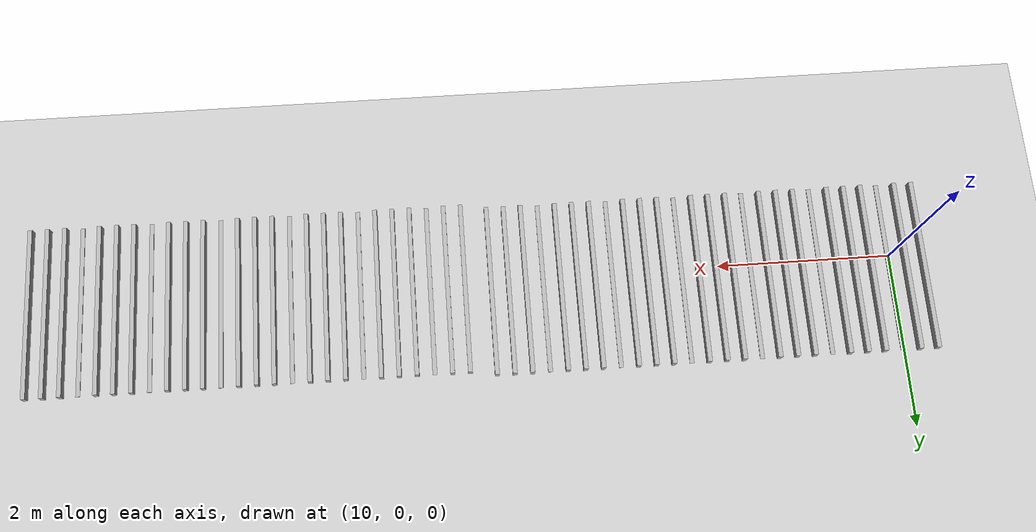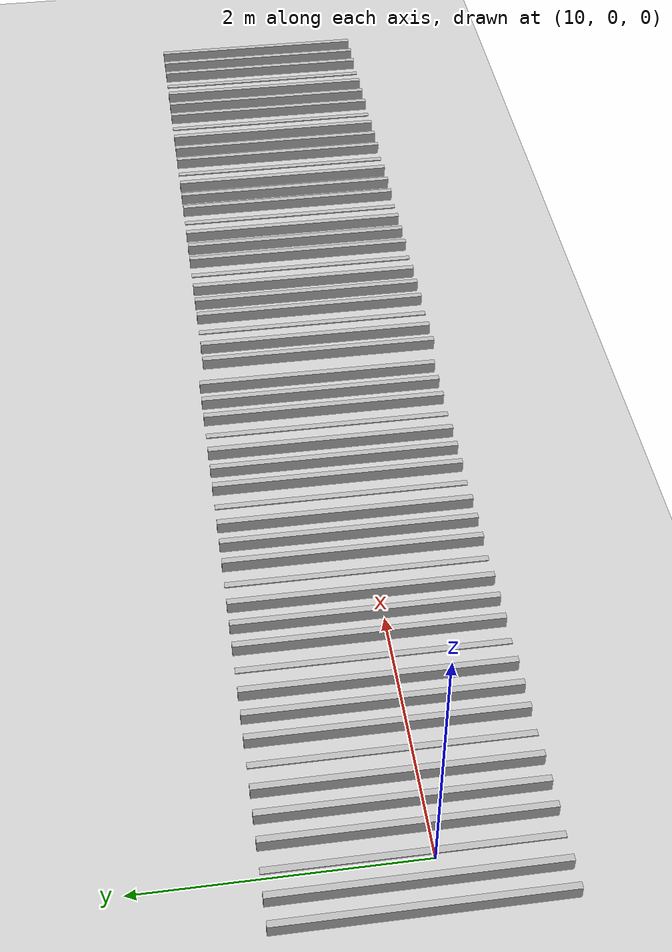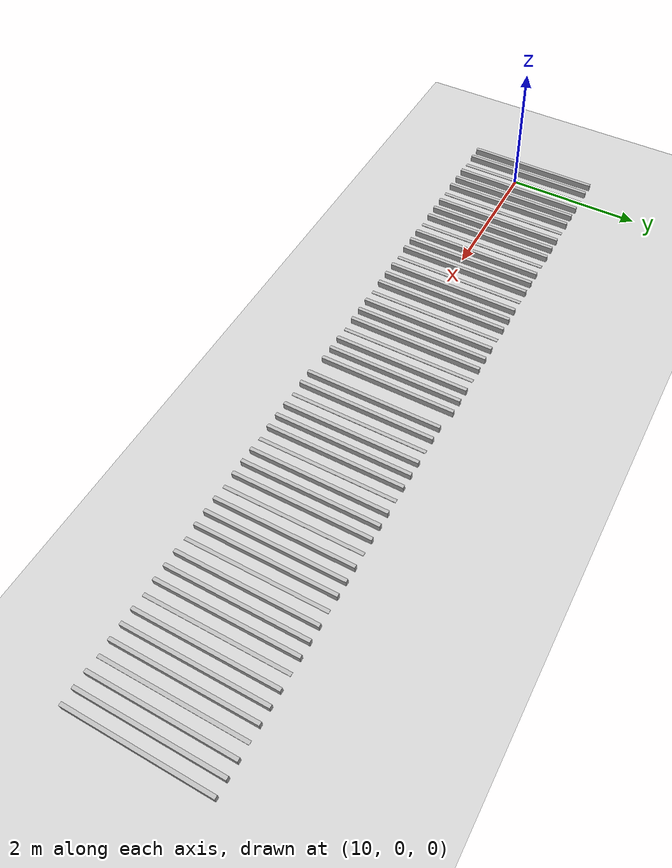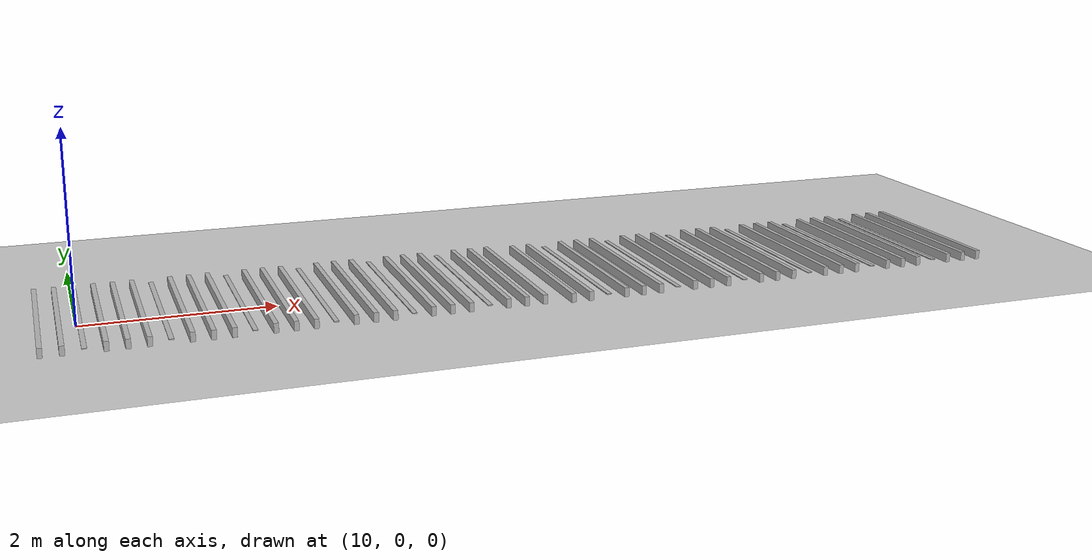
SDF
<sdf version="1.7">
 <world name="default">
  <model name="ground_plane">
   <static>1</static>
   <link name="link">
    <collision name="collision">
     <geometry><plane><normal>0 0 1</normal><size>100 100</size></plane></geometry>
     <surface>
      <contact><collide_bitmask>65535</collide_bitmask></contact>
      <friction><ode><mu>100</mu><mu2>50</mu2></ode></friction>
     </surface>
    </collision>
    <visual name="visual">
     <cast_shadows>0</cast_shadows>
     <geometry><plane><normal>0 0 1</normal><size>100 100</size></plane></geometry>
     <material>
      <script><uri>file://media/materials/scripts/gazebo.material</uri><name>Gazebo/Grey</name></script>
     </material>
    </visual>
   </link>
  </model>
  <model name="my_model_0">
   <link name="bot_wall0">
    <visual name="visual">
     <geometry><box><size>0.05 2 0.1</size></box></geometry>
     <material><script><uri>model://hallway/materials/scripts</uri><name>feature_3</name></script></material>
    </visual>
    <collision name="collision"><geometry><box><size>0.05 2 0.1</size></box></geometry></collision>
    <inertial>
     <inertia><ixx>1</ixx><ixy>0</ixy><ixz>0</ixz><iyy>1</iyy><iyz>0</iyz><izz>1</izz></inertia>
     <mass>1</mass>
    </inertial>
   </link>
   <link name="bot_wall1">
    <pose>0.2 0 0 0 -0 0</pose>
    <visual name="visual">
     <geometry><box><size>0.05 2 0.1</size></box></geometry>
     <material><script><uri>model://hallway/materials/scripts</uri><name>feature_3</name></script></material>
    </visual>
    <collision name="collision"><geometry><box><size>0.05 2 0.1</size></box></geometry></collision>
    <inertial>
     <inertia><ixx>1</ixx><ixy>0</ixy><ixz>0</ixz><iyy>1</iyy><iyz>0</iyz><izz>1</izz></inertia>
     <mass>1</mass>
    </inertial>
   </link>
   <link name="bot_wall2">
    <pose>0.4 0 0 0 -0 0</pose>
    <visual name="visual">
     <geometry><box><size>0.05 2 0.01</size></box></geometry>
     <material><script><uri>model://hallway/materials/scripts</uri><name>feature_3</name></script></material>
    </visual>
    <collision name="collision"><geometry><box><size>0.05 2 0.01</size></box></geometry></collision>
    <inertial>
     <inertia><ixx>1</ixx><ixy>0</ixy><ixz>0</ixz><iyy>1</iyy><iyz>0</iyz><izz>1</izz></inertia>
     <mass>1</mass>
    </inertial>
   </link>
   <link name="bot_wall3">
    <pose>0.6 0 0 0 -0 0</pose>
    <visual name="visual">
     <geometry><box><size>0.05 2 0.1</size></box></geometry>
     <material><script><uri>model://hallway/materials/scripts</uri><name>feature_3</name></script></material>
    </visual>
    <collision name="collision"><geometry><box><size>0.05 2 0.1</size></box></geometry></collision>
    <inertial>
     <inertia><ixx>1</ixx><ixy>0</ixy><ixz>0</ixz><iyy>1</iyy><iyz>0</iyz><izz>1</izz></inertia>
     <mass>1</mass>
    </inertial>
   </link>
   <link name="bot_wall4">
    <pose>0.8 0 0 0 -0 0</pose>
    <visual name="visual">
     <geometry><box><size>0.05 2 0.1</size></box></geometry>
     <material><script><uri>model://hallway/materials/scripts</uri><name>feature_3</name></script></material>
    </visual>
    <collision name="collision"><geometry><box><size>0.05 2 0.1</size></box></geometry></collision>
    <inertial>
     <inertia><ixx>1</ixx><ixy>0</ixy><ixz>0</ixz><iyy>1</iyy><iyz>0</iyz><izz>1</izz></inertia>
     <mass>1</mass>
    </inertial>
   </link>
   <link name="bot_wall5">
    <pose>1 0 0 0 -0 0</pose>
    <visual name="visual">
     <geometry><box><size>0.05 2 0.1</size></box></geometry>
     <material><script><uri>model://hallway/materials/scripts</uri><name>feature_3</name></script></material>
    </visual>
    <collision name="collision"><geometry><box><size>0.05 2 0.1</size></box></geometry></collision>
    <inertial>
     <inertia><ixx>1</ixx><ixy>0</ixy><ixz>0</ixz><iyy>1</iyy><iyz>0</iyz><izz>1</izz></inertia>
     <mass>1</mass>
    </inertial>
   </link>
   <link name="bot_wall6">
    <pose>1.2 0 0 0 -0 0</pose>
    <visual name="visual">
     <geometry><box><size>0.05 2 0.01</size></box></geometry>
     <material><script><uri>model://hallway/materials/scripts</uri><name>feature_3</name></script></material>
    </visual>
    <collision name="collision"><geometry><box><size>0.05 2 0.01</size></box></geometry></collision>
    <inertial>
     <inertia><ixx>1</ixx><ixy>0</ixy><ixz>0</ixz><iyy>1</iyy><iyz>0</iyz><izz>1</izz></inertia>
     <mass>1</mass>
    </inertial>
   </link>
   <link name="bot_wall7">
    <pose>1.4 0 0 0 -0 0</pose>
    <visual name="visual">
     <geometry><box><size>0.05 2 0.1</size></box></geometry>
     <material><script><uri>model://hallway/materials/scripts</uri><name>feature_3</name></script></material>
    </visual>
    <collision name="collision"><geometry><box><size>0.05 2 0.1</size></box></geometry></collision>
    <inertial>
     <inertia><ixx>1</ixx><ixy>0</ixy><ixz>0</ixz><iyy>1</iyy><iyz>0</iyz><izz>1</izz></inertia>
     <mass>1</mass>
    </inertial>
   </link>
   <link name="bot_wall8">
    <pose>1.6 0 0 0 -0 0</pose>
    <visual name="visual">
     <geometry><box><size>0.05 2 0.1</size></box></geometry>
     <material><script><uri>model://hallway/materials/scripts</uri><name>feature_3</name></script></material>
    </visual>
    <collision name="collision"><geometry><box><size>0.05 2 0.1</size></box></geometry></collision>
    <inertial>
     <inertia><ixx>1</ixx><ixy>0</ixy><ixz>0</ixz><iyy>1</iyy><iyz>0</iyz><izz>1</izz></inertia>
     <mass>1</mass>
    </inertial>
   </link>
   <link name="bot_wall9">
    <pose>1.8 0 0 0 -0 0</pose>
    <visual name="visual">
     <geometry><box><size>0.05 2 0.1</size></box></geometry>
     <material><script><uri>model://hallway/materials/scripts</uri><name>feature_3</name></script></material>
    </visual>
    <collision name="collision"><geometry><box><size>0.05 2 0.1</size></box></geometry></collision>
    <inertial>
     <inertia><ixx>1</ixx><ixy>0</ixy><ixz>0</ixz><iyy>1</iyy><iyz>0</iyz><izz>1</izz></inertia>
     <mass>1</mass>
    </inertial>
   </link>
   <link name="bot_wall10">
    <pose>2 0 0 0 -0 0</pose>
    <visual name="visual">
     <geometry><box><size>0.05 2 0.01</size></box></geometry>
     <material><script><uri>model://hallway/materials/scripts</uri><name>feature_3</name></script></material>
    </visual>
    <collision name="collision"><geometry><box><size>0.05 2 0.01</size></box></geometry></collision>
    <inertial>
     <inertia><ixx>1</ixx><ixy>0</ixy><ixz>0</ixz><iyy>1</iyy><iyz>0</iyz><izz>1</izz></inertia>
     <mass>1</mass>
    </inertial>
   </link>
   <link name="bot_wall11">
    <pose>2.2 0 0 0 -0 0</pose>
    <visual name="visual">
     <geometry><box><size>0.05 2 0.1</size></box></geometry>
     <material><script><uri>model://hallway/materials/scripts</uri><name>feature_3</name></script></material>
    </visual>
    <collision name="collision"><geometry><box><size>0.05 2 0.1</size></box></geometry></collision>
    <inertial>
     <inertia><ixx>1</ixx><ixy>0</ixy><ixz>0</ixz><iyy>1</iyy><iyz>0</iyz><izz>1</izz></inertia>
     <mass>1</mass>
    </inertial>
   </link>
   <link name="bot_wall12">
    <pose>2.4 0 0 0 -0 0</pose>
    <visual name="visual">
     <geometry><box><size>0.05 2 0.1</size></box></geometry>
     <material><script><uri>model://hallway/materials/scripts</uri><name>feature_3</name></script></material>
    </visual>
    <collision name="collision"><geometry><box><size>0.05 2 0.1</size></box></geometry></collision>
    <inertial>
     <inertia><ixx>1</ixx><ixy>0</ixy><ixz>0</ixz><iyy>1</iyy><iyz>0</iyz><izz>1</izz></inertia>
     <mass>1</mass>
    </inertial>
   </link>
   <link name="bot_wall13">
    <pose>2.6 0 0 0 -0 0</pose>
    <visual name="visual">
     <geometry><box><size>0.05 2 0.1</size></box></geometry>
     <material><script><uri>model://hallway/materials/scripts</uri><name>feature_3</name></script></material>
    </visual>
    <collision name="collision"><geometry><box><size>0.05 2 0.1</size></box></geometry></collision>
    <inertial>
     <inertia><ixx>1</ixx><ixy>0</ixy><ixz>0</ixz><iyy>1</iyy><iyz>0</iyz><izz>1</izz></inertia>
     <mass>1</mass>
    </inertial>
   </link>
   <link name="bot_wall14">
    <pose>2.8 0 0 0 -0 0</pose>
    <visual name="visual">
     <geometry><box><size>0.05 2 0.01</size></box></geometry>
     <material><script><uri>model://hallway/materials/scripts</uri><name>feature_3</name></script></material>
    </visual>
    <collision name="collision"><geometry><box><size>0.05 2 0.01</size></box></geometry></collision>
    <inertial>
     <inertia><ixx>1</ixx><ixy>0</ixy><ixz>0</ixz><iyy>1</iyy><iyz>0</iyz><izz>1</izz></inertia>
     <mass>1</mass>
    </inertial>
   </link>
   <link name="bot_wall15">
    <pose>3 0 0 0 -0 0</pose>
    <visual name="visual">
     <geometry><box><size>0.05 2 0.1</size></box></geometry>
     <material><script><uri>model://hallway/materials/scripts</uri><name>feature_3</name></script></material>
    </visual>
    <collision name="collision"><geometry><box><size>0.05 2 0.1</size></box></geometry></collision>
    <inertial>
     <inertia><ixx>1</ixx><ixy>0</ixy><ixz>0</ixz><iyy>1</iyy><iyz>0</iyz><izz>1</izz></inertia>
     <mass>1</mass>
    </inertial>
   </link>
   <link name="bot_wall16">
    <pose>3.2 0 0 0 -0 0</pose>
    <visual name="visual">
     <geometry><box><size>0.05 2 0.1</size></box></geometry>
     <material><script><uri>model://hallway/materials/scripts</uri><name>feature_3</name></script></material>
    </visual>
    <collision name="collision"><geometry><box><size>0.05 2 0.1</size></box></geometry></collision>
    <inertial>
     <inertia><ixx>1</ixx><ixy>0</ixy><ixz>0</ixz><iyy>1</iyy><iyz>0</iyz><izz>1</izz></inertia>
     <mass>1</mass>
    </inertial>
   </link>
   <link name="bot_wall17">
    <pose>3.4 0 0 0 -0 0</pose>
    <visual name="visual">
     <geometry><box><size>0.05 2 0.1</size></box></geometry>
     <material><script><uri>model://hallway/materials/scripts</uri><name>feature_3</name></script></material>
    </visual>
    <collision name="collision"><geometry><box><size>0.05 2 0.1</size></box></geometry></collision>
    <inertial>
     <inertia><ixx>1</ixx><ixy>0</ixy><ixz>0</ixz><iyy>1</iyy><iyz>0</iyz><izz>1</izz></inertia>
     <mass>1</mass>
    </inertial>
   </link>
   <link name="bot_wall18">
    <pose>3.6 0 0 0 -0 0</pose>
    <visual name="visual">
     <geometry><box><size>0.05 2 0.01</size></box></geometry>
     <material><script><uri>model://hallway/materials/scripts</uri><name>feature_3</name></script></material>
    </visual>
    <collision name="collision"><geometry><box><size>0.05 2 0.01</size></box></geometry></collision>
    <inertial>
     <inertia><ixx>1</ixx><ixy>0</ixy><ixz>0</ixz><iyy>1</iyy><iyz>0</iyz><izz>1</izz></inertia>
     <mass>1</mass>
    </inertial>
   </link>
   <link name="bot_wall19">
    <pose>3.8 0 0 0 -0 0</pose>
    <visual name="visual">
     <geometry><box><size>0.05 2 0.1</size></box></geometry>
     <material><script><uri>model://hallway/materials/scripts</uri><name>feature_3</name></script></material>
    </visual>
    <collision name="collision"><geometry><box><size>0.05 2 0.1</size></box></geometry></collision>
    <inertial>
     <inertia><ixx>1</ixx><ixy>0</ixy><ixz>0</ixz><iyy>1</iyy><iyz>0</iyz><izz>1</izz></inertia>
     <mass>1</mass>
    </inertial>
   </link>
   <link name="bot_wall20">
    <pose>4 0 0 0 -0 0</pose>
    <visual name="visual">
     <geometry><box><size>0.05 2 0.1</size></box></geometry>
     <material><script><uri>model://hallway/materials/scripts</uri><name>feature_3</name></script></material>
    </visual>
    <collision name="collision"><geometry><box><size>0.05 2 0.1</size></box></geometry></collision>
    <inertial>
     <inertia><ixx>1</ixx><ixy>0</ixy><ixz>0</ixz><iyy>1</iyy><iyz>0</iyz><izz>1</izz></inertia>
     <mass>1</mass>
    </inertial>
   </link>
   <link name="bot_wall21">
    <pose>4.2 0 0 0 -0 0</pose>
    <visual name="visual">
     <geometry><box><size>0.05 2 0.1</size></box></geometry>
     <material><script><uri>model://hallway/materials/scripts</uri><name>feature_3</name></script></material>
    </visual>
    <collision name="collision"><geometry><box><size>0.05 2 0.1</size></box></geometry></collision>
    <inertial>
     <inertia><ixx>1</ixx><ixy>0</ixy><ixz>0</ixz><iyy>1</iyy><iyz>0</iyz><izz>1</izz></inertia>
     <mass>1</mass>
    </inertial>
   </link>
   <link name="bot_wall22">
    <pose>4.4 0 0 0 -0 0</pose>
    <visual name="visual">
     <geometry><box><size>0.05 2 0.01</size></box></geometry>
     <material><script><uri>model://hallway/materials/scripts</uri><name>feature_3</name></script></material>
    </visual>
    <collision name="collision"><geometry><box><size>0.05 2 0.01</size></box></geometry></collision>
    <inertial>
     <inertia><ixx>1</ixx><ixy>0</ixy><ixz>0</ixz><iyy>1</iyy><iyz>0</iyz><izz>1</izz></inertia>
     <mass>1</mass>
    </inertial>
   </link>
   <link name="bot_wall23">
    <pose>4.6 0 0 0 -0 0</pose>
    <visual name="visual">
     <geometry><box><size>0.05 2 0.1</size></box></geometry>
     <material><script><uri>model://hallway/materials/scripts</uri><name>feature_3</name></script></material>
    </visual>
    <collision name="collision"><geometry><box><size>0.05 2 0.1</size></box></geometry></collision>
    <inertial>
     <inertia><ixx>1</ixx><ixy>0</ixy><ixz>0</ixz><iyy>1</iyy><iyz>0</iyz><izz>1</izz></inertia>
     <mass>1</mass>
    </inertial>
   </link>
   <link name="bot_wall24">
    <pose>4.8 0 0 0 -0 0</pose>
    <visual name="visual">
     <geometry><box><size>0.05 2 0.1</size></box></geometry>
     <material><script><uri>model://hallway/materials/scripts</uri><name>feature_3</name></script></material>
    </visual>
    <collision name="collision"><geometry><box><size>0.05 2 0.1</size></box></geometry></collision>
    <inertial>
     <inertia><ixx>1</ixx><ixy>0</ixy><ixz>0</ixz><iyy>1</iyy><iyz>0</iyz><izz>1</izz></inertia>
     <mass>1</mass>
    </inertial>
   </link>
   <link name="bot_wall25">
    <pose>5 0 0 0 -0 0</pose>
    <visual name="visual">
     <geometry><box><size>0.05 2 0.1</size></box></geometry>
     <material><script><uri>model://hallway/materials/scripts</uri><name>feature_3</name></script></material>
    </visual>
    <collision name="collision"><geometry><box><size>0.05 2 0.1</size></box></geometry></collision>
    <inertial>
     <inertia><ixx>1</ixx><ixy>0</ixy><ixz>0</ixz><iyy>1</iyy><iyz>0</iyz><izz>1</izz></inertia>
     <mass>1</mass>
    </inertial>
   </link>
   <joint name="joint0" type="fixed"><parent>bot_wall0</parent><child>bot_wall1</child></joint>
   <joint name="joint1" type="fixed"><parent>bot_wall1</parent><child>bot_wall2</child></joint>
   <joint name="joint2" type="fixed"><parent>bot_wall2</parent><child>bot_wall3</child></joint>
   <joint name="joint3" type="fixed"><parent>bot_wall3</parent><child>bot_wall4</child></joint>
   <joint name="joint4" type="fixed"><parent>bot_wall4</parent><child>bot_wall5</child></joint>
   <joint name="joint5" type="fixed"><parent>bot_wall5</parent><child>bot_wall6</child></joint>
   <joint name="joint6" type="fixed"><parent>bot_wall6</parent><child>bot_wall7</child></joint>
   <joint name="joint7" type="fixed"><parent>bot_wall7</parent><child>bot_wall8</child></joint>
   <joint name="joint8" type="fixed"><parent>bot_wall8</parent><child>bot_wall9</child></joint>
   <joint name="joint9" type="fixed"><parent>bot_wall9</parent><child>bot_wall10</child></joint>
   <joint name="joint10" type="fixed"><parent>bot_wall10</parent><child>bot_wall11</child></joint>
   <joint name="joint11" type="fixed"><parent>bot_wall11</parent><child>bot_wall12</child></joint>
   <joint name="joint12" type="fixed"><parent>bot_wall12</parent><child>bot_wall13</child></joint>
   <joint name="joint13" type="fixed"><parent>bot_wall13</parent><child>bot_wall14</child></joint>
   <joint name="joint14" type="fixed"><parent>bot_wall14</parent><child>bot_wall15</child></joint>
   <joint name="joint15" type="fixed"><parent>bot_wall15</parent><child>bot_wall16</child></joint>
   <joint name="joint16" type="fixed"><parent>bot_wall16</parent><child>bot_wall17</child></joint>
   <joint name="joint17" type="fixed"><parent>bot_wall17</parent><child>bot_wall18</child></joint>
   <joint name="joint18" type="fixed"><parent>bot_wall18</parent><child>bot_wall19</child></joint>
   <joint name="joint19" type="fixed"><parent>bot_wall19</parent><child>bot_wall20</child></joint>
   <joint name="joint20" type="fixed"><parent>bot_wall20</parent><child>bot_wall21</child></joint>
   <joint name="joint21" type="fixed"><parent>bot_wall21</parent><child>bot_wall22</child></joint>
   <joint name="joint22" type="fixed"><parent>bot_wall22</parent><child>bot_wall23</child></joint>
   <joint name="joint23" type="fixed"><parent>bot_wall23</parent><child>bot_wall24</child></joint>
   <joint name="joint24" type="fixed"><parent>bot_wall24</parent><child>bot_wall25</child></joint>
   <pose>9.63125 0.135081 0.049995 -1e-06 -1e-06 6.7e-05</pose>
  </model>
  <model name="my_model_1">
   <link name="bot_wall0">
    <visual name="visual">
     <geometry><box><size>0.05 2 0.1</size></box></geometry>
     <material><script><uri>model://hallway/materials/scripts</uri><name>feature_3</name></script></material>
    </visual>
    <collision name="collision"><geometry><box><size>0.05 2 0.1</size></box></geometry></collision>
    <inertial>
     <inertia><ixx>1</ixx><ixy>0</ixy><ixz>0</ixz><iyy>1</iyy><iyz>0</iyz><izz>1</izz></inertia>
     <mass>1</mass>
    </inertial>
   </link>
   <link name="bot_wall1">
    <pose>0.2 0 0 0 -0 0</pose>
    <visual name="visual">
     <geometry><box><size>0.05 2 0.1</size></box></geometry>
     <material><script><uri>model://hallway/materials/scripts</uri><name>feature_3</name></script></material>
    </visual>
    <collision name="collision"><geometry><box><size>0.05 2 0.1</size></box></geometry></collision>
    <inertial>
     <inertia><ixx>1</ixx><ixy>0</ixy><ixz>0</ixz><iyy>1</iyy><iyz>0</iyz><izz>1</izz></inertia>
     <mass>1</mass>
    </inertial>
   </link>
   <link name="bot_wall2">
    <pose>0.4 0 0 0 -0 0</pose>
    <visual name="visual">
     <geometry><box><size>0.05 2 0.01</size></box></geometry>
     <material><script><uri>model://hallway/materials/scripts</uri><name>feature_3</name></script></material>
    </visual>
    <collision name="collision"><geometry><box><size>0.05 2 0.01</size></box></geometry></collision>
    <inertial>
     <inertia><ixx>1</ixx><ixy>0</ixy><ixz>0</ixz><iyy>1</iyy><iyz>0</iyz><izz>1</izz></inertia>
     <mass>1</mass>
    </inertial>
   </link>
   <link name="bot_wall3">
    <pose>0.6 0 0 0 -0 0</pose>
    <visual name="visual">
     <geometry><box><size>0.05 2 0.1</size></box></geometry>
     <material><script><uri>model://hallway/materials/scripts</uri><name>feature_3</name></script></material>
    </visual>
    <collision name="collision"><geometry><box><size>0.05 2 0.1</size></box></geometry></collision>
    <inertial>
     <inertia><ixx>1</ixx><ixy>0</ixy><ixz>0</ixz><iyy>1</iyy><iyz>0</iyz><izz>1</izz></inertia>
     <mass>1</mass>
    </inertial>
   </link>
   <link name="bot_wall4">
    <pose>0.8 0 0 0 -0 0</pose>
    <visual name="visual">
     <geometry><box><size>0.05 2 0.1</size></box></geometry>
     <material><script><uri>model://hallway/materials/scripts</uri><name>feature_3</name></script></material>
    </visual>
    <collision name="collision"><geometry><box><size>0.05 2 0.1</size></box></geometry></collision>
    <inertial>
     <inertia><ixx>1</ixx><ixy>0</ixy><ixz>0</ixz><iyy>1</iyy><iyz>0</iyz><izz>1</izz></inertia>
     <mass>1</mass>
    </inertial>
   </link>
   <link name="bot_wall5">
    <pose>1 0 0 0 -0 0</pose>
    <visual name="visual">
     <geometry><box><size>0.05 2 0.1</size></box></geometry>
     <material><script><uri>model://hallway/materials/scripts</uri><name>feature_3</name></script></material>
    </visual>
    <collision name="collision"><geometry><box><size>0.05 2 0.1</size></box></geometry></collision>
    <inertial>
     <inertia><ixx>1</ixx><ixy>0</ixy><ixz>0</ixz><iyy>1</iyy><iyz>0</iyz><izz>1</izz></inertia>
     <mass>1</mass>
    </inertial>
   </link>
   <link name="bot_wall6">
    <pose>1.2 0 0 0 -0 0</pose>
    <visual name="visual">
     <geometry><box><size>0.05 2 0.01</size></box></geometry>
     <material><script><uri>model://hallway/materials/scripts</uri><name>feature_3</name></script></material>
    </visual>
    <collision name="collision"><geometry><box><size>0.05 2 0.01</size></box></geometry></collision>
    <inertial>
     <inertia><ixx>1</ixx><ixy>0</ixy><ixz>0</ixz><iyy>1</iyy><iyz>0</iyz><izz>1</izz></inertia>
     <mass>1</mass>
    </inertial>
   </link>
   <link name="bot_wall7">
    <pose>1.4 0 0 0 -0 0</pose>
    <visual name="visual">
     <geometry><box><size>0.05 2 0.1</size></box></geometry>
     <material><script><uri>model://hallway/materials/scripts</uri><name>feature_3</name></script></material>
    </visual>
    <collision name="collision"><geometry><box><size>0.05 2 0.1</size></box></geometry></collision>
    <inertial>
     <inertia><ixx>1</ixx><ixy>0</ixy><ixz>0</ixz><iyy>1</iyy><iyz>0</iyz><izz>1</izz></inertia>
     <mass>1</mass>
    </inertial>
   </link>
   <link name="bot_wall8">
    <pose>1.6 0 0 0 -0 0</pose>
    <visual name="visual">
     <geometry><box><size>0.05 2 0.1</size></box></geometry>
     <material><script><uri>model://hallway/materials/scripts</uri><name>feature_3</name></script></material>
    </visual>
    <collision name="collision"><geometry><box><size>0.05 2 0.1</size></box></geometry></collision>
    <inertial>
     <inertia><ixx>1</ixx><ixy>0</ixy><ixz>0</ixz><iyy>1</iyy><iyz>0</iyz><izz>1</izz></inertia>
     <mass>1</mass>
    </inertial>
   </link>
   <link name="bot_wall9">
    <pose>1.8 0 0 0 -0 0</pose>
    <visual name="visual">
     <geometry><box><size>0.05 2 0.1</size></box></geometry>
     <material><script><uri>model://hallway/materials/scripts</uri><name>feature_3</name></script></material>
    </visual>
    <collision name="collision"><geometry><box><size>0.05 2 0.1</size></box></geometry></collision>
    <inertial>
     <inertia><ixx>1</ixx><ixy>0</ixy><ixz>0</ixz><iyy>1</iyy><iyz>0</iyz><izz>1</izz></inertia>
     <mass>1</mass>
    </inertial>
   </link>
   <link name="bot_wall10">
    <pose>2 0 0 0 -0 0</pose>
    <visual name="visual">
     <geometry><box><size>0.05 2 0.01</size></box></geometry>
     <material><script><uri>model://hallway/materials/scripts</uri><name>feature_3</name></script></material>
    </visual>
    <collision name="collision"><geometry><box><size>0.05 2 0.01</size></box></geometry></collision>
    <inertial>
     <inertia><ixx>1</ixx><ixy>0</ixy><ixz>0</ixz><iyy>1</iyy><iyz>0</iyz><izz>1</izz></inertia>
     <mass>1</mass>
    </inertial>
   </link>
   <link name="bot_wall11">
    <pose>2.2 0 0 0 -0 0</pose>
    <visual name="visual">
     <geometry><box><size>0.05 2 0.1</size></box></geometry>
     <material><script><uri>model://hallway/materials/scripts</uri><name>feature_3</name></script></material>
    </visual>
    <collision name="collision"><geometry><box><size>0.05 2 0.1</size></box></geometry></collision>
    <inertial>
     <inertia><ixx>1</ixx><ixy>0</ixy><ixz>0</ixz><iyy>1</iyy><iyz>0</iyz><izz>1</izz></inertia>
     <mass>1</mass>
    </inertial>
   </link>
   <link name="bot_wall12">
    <pose>2.4 0 0 0 -0 0</pose>
    <visual name="visual">
     <geometry><box><size>0.05 2 0.1</size></box></geometry>
     <material><script><uri>model://hallway/materials/scripts</uri><name>feature_3</name></script></material>
    </visual>
    <collision name="collision"><geometry><box><size>0.05 2 0.1</size></box></geometry></collision>
    <inertial>
     <inertia><ixx>1</ixx><ixy>0</ixy><ixz>0</ixz><iyy>1</iyy><iyz>0</iyz><izz>1</izz></inertia>
     <mass>1</mass>
    </inertial>
   </link>
   <link name="bot_wall13">
    <pose>2.6 0 0 0 -0 0</pose>
    <visual name="visual">
     <geometry><box><size>0.05 2 0.1</size></box></geometry>
     <material><script><uri>model://hallway/materials/scripts</uri><name>feature_3</name></script></material>
    </visual>
    <collision name="collision"><geometry><box><size>0.05 2 0.1</size></box></geometry></collision>
    <inertial>
     <inertia><ixx>1</ixx><ixy>0</ixy><ixz>0</ixz><iyy>1</iyy><iyz>0</iyz><izz>1</izz></inertia>
     <mass>1</mass>
    </inertial>
   </link>
   <link name="bot_wall14">
    <pose>2.8 0 0 0 -0 0</pose>
    <visual name="visual">
     <geometry><box><size>0.05 2 0.01</size></box></geometry>
     <material><script><uri>model://hallway/materials/scripts</uri><name>feature_3</name></script></material>
    </visual>
    <collision name="collision"><geometry><box><size>0.05 2 0.01</size></box></geometry></collision>
    <inertial>
     <inertia><ixx>1</ixx><ixy>0</ixy><ixz>0</ixz><iyy>1</iyy><iyz>0</iyz><izz>1</izz></inertia>
     <mass>1</mass>
    </inertial>
   </link>
   <link name="bot_wall15">
    <pose>3 0 0 0 -0 0</pose>
    <visual name="visual">
     <geometry><box><size>0.05 2 0.1</size></box></geometry>
     <material><script><uri>model://hallway/materials/scripts</uri><name>feature_3</name></script></material>
    </visual>
    <collision name="collision"><geometry><box><size>0.05 2 0.1</size></box></geometry></collision>
    <inertial>
     <inertia><ixx>1</ixx><ixy>0</ixy><ixz>0</ixz><iyy>1</iyy><iyz>0</iyz><izz>1</izz></inertia>
     <mass>1</mass>
    </inertial>
   </link>
   <link name="bot_wall16">
    <pose>3.2 0 0 0 -0 0</pose>
    <visual name="visual">
     <geometry><box><size>0.05 2 0.1</size></box></geometry>
     <material><script><uri>model://hallway/materials/scripts</uri><name>feature_3</name></script></material>
    </visual>
    <collision name="collision"><geometry><box><size>0.05 2 0.1</size></box></geometry></collision>
    <inertial>
     <inertia><ixx>1</ixx><ixy>0</ixy><ixz>0</ixz><iyy>1</iyy><iyz>0</iyz><izz>1</izz></inertia>
     <mass>1</mass>
    </inertial>
   </link>
   <link name="bot_wall17">
    <pose>3.4 0 0 0 -0 0</pose>
    <visual name="visual">
     <geometry><box><size>0.05 2 0.1</size></box></geometry>
     <material><script><uri>model://hallway/materials/scripts</uri><name>feature_3</name></script></material>
    </visual>
    <collision name="collision"><geometry><box><size>0.05 2 0.1</size></box></geometry></collision>
    <inertial>
     <inertia><ixx>1</ixx><ixy>0</ixy><ixz>0</ixz><iyy>1</iyy><iyz>0</iyz><izz>1</izz></inertia>
     <mass>1</mass>
    </inertial>
   </link>
   <link name="bot_wall18">
    <pose>3.6 0 0 0 -0 0</pose>
    <visual name="visual">
     <geometry><box><size>0.05 2 0.01</size></box></geometry>
     <material><script><uri>model://hallway/materials/scripts</uri><name>feature_3</name></script></material>
    </visual>
    <collision name="collision"><geometry><box><size>0.05 2 0.01</size></box></geometry></collision>
    <inertial>
     <inertia><ixx>1</ixx><ixy>0</ixy><ixz>0</ixz><iyy>1</iyy><iyz>0</iyz><izz>1</izz></inertia>
     <mass>1</mass>
    </inertial>
   </link>
   <link name="bot_wall19">
    <pose>3.8 0 0 0 -0 0</pose>
    <visual name="visual">
     <geometry><box><size>0.05 2 0.1</size></box></geometry>
     <material><script><uri>model://hallway/materials/scripts</uri><name>feature_3</name></script></material>
    </visual>
    <collision name="collision"><geometry><box><size>0.05 2 0.1</size></box></geometry></collision>
    <inertial>
     <inertia><ixx>1</ixx><ixy>0</ixy><ixz>0</ixz><iyy>1</iyy><iyz>0</iyz><izz>1</izz></inertia>
     <mass>1</mass>
    </inertial>
   </link>
   <link name="bot_wall20">
    <pose>4 0 0 0 -0 0</pose>
    <visual name="visual">
     <geometry><box><size>0.05 2 0.1</size></box></geometry>
     <material><script><uri>model://hallway/materials/scripts</uri><name>feature_3</name></script></material>
    </visual>
    <collision name="collision"><geometry><box><size>0.05 2 0.1</size></box></geometry></collision>
    <inertial>
     <inertia><ixx>1</ixx><ixy>0</ixy><ixz>0</ixz><iyy>1</iyy><iyz>0</iyz><izz>1</izz></inertia>
     <mass>1</mass>
    </inertial>
   </link>
   <link name="bot_wall21">
    <pose>4.2 0 0 0 -0 0</pose>
    <visual name="visual">
     <geometry><box><size>0.05 2 0.1</size></box></geometry>
     <material><script><uri>model://hallway/materials/scripts</uri><name>feature_3</name></script></material>
    </visual>
    <collision name="collision"><geometry><box><size>0.05 2 0.1</size></box></geometry></collision>
    <inertial>
     <inertia><ixx>1</ixx><ixy>0</ixy><ixz>0</ixz><iyy>1</iyy><iyz>0</iyz><izz>1</izz></inertia>
     <mass>1</mass>
    </inertial>
   </link>
   <link name="bot_wall22">
    <pose>4.4 0 0 0 -0 0</pose>
    <visual name="visual">
     <geometry><box><size>0.05 2 0.01</size></box></geometry>
     <material><script><uri>model://hallway/materials/scripts</uri><name>feature_3</name></script></material>
    </visual>
    <collision name="collision"><geometry><box><size>0.05 2 0.01</size></box></geometry></collision>
    <inertial>
     <inertia><ixx>1</ixx><ixy>0</ixy><ixz>0</ixz><iyy>1</iyy><iyz>0</iyz><izz>1</izz></inertia>
     <mass>1</mass>
    </inertial>
   </link>
   <link name="bot_wall23">
    <pose>4.6 0 0 0 -0 0</pose>
    <visual name="visual">
     <geometry><box><size>0.05 2 0.1</size></box></geometry>
     <material><script><uri>model://hallway/materials/scripts</uri><name>feature_3</name></script></material>
    </visual>
    <collision name="collision"><geometry><box><size>0.05 2 0.1</size></box></geometry></collision>
    <inertial>
     <inertia><ixx>1</ixx><ixy>0</ixy><ixz>0</ixz><iyy>1</iyy><iyz>0</iyz><izz>1</izz></inertia>
     <mass>1</mass>
    </inertial>
   </link>
   <link name="bot_wall24">
    <pose>4.8 0 0 0 -0 0</pose>
    <visual name="visual">
     <geometry><box><size>0.05 2 0.1</size></box></geometry>
     <material><script><uri>model://hallway/materials/scripts</uri><name>feature_3</name></script></material>
    </visual>
    <collision name="collision"><geometry><box><size>0.05 2 0.1</size></box></geometry></collision>
    <inertial>
     <inertia><ixx>1</ixx><ixy>0</ixy><ixz>0</ixz><iyy>1</iyy><iyz>0</iyz><izz>1</izz></inertia>
     <mass>1</mass>
    </inertial>
   </link>
   <link name="bot_wall25">
    <pose>5 0 0 0 -0 0</pose>
    <visual name="visual">
     <geometry><box><size>0.05 2 0.1</size></box></geometry>
     <material><script><uri>model://hallway/materials/scripts</uri><name>feature_3</name></script></material>
    </visual>
    <collision name="collision"><geometry><box><size>0.05 2 0.1</size></box></geometry></collision>
    <inertial>
     <inertia><ixx>1</ixx><ixy>0</ixy><ixz>0</ixz><iyy>1</iyy><iyz>0</iyz><izz>1</izz></inertia>
     <mass>1</mass>
    </inertial>
   </link>
   <joint name="joint0" type="fixed"><parent>bot_wall0</parent><child>bot_wall1</child></joint>
   <joint name="joint1" type="fixed"><parent>bot_wall1</parent><child>bot_wall2</child></joint>
   <joint name="joint2" type="fixed"><parent>bot_wall2</parent><child>bot_wall3</child></joint>
   <joint name="joint3" type="fixed"><parent>bot_wall3</parent><child>bot_wall4</child></joint>
   <joint name="joint4" type="fixed"><parent>bot_wall4</parent><child>bot_wall5</child></joint>
   <joint name="joint5" type="fixed"><parent>bot_wall5</parent><child>bot_wall6</child></joint>
   <joint name="joint6" type="fixed"><parent>bot_wall6</parent><child>bot_wall7</child></joint>
   <joint name="joint7" type="fixed"><parent>bot_wall7</parent><child>bot_wall8</child></joint>
   <joint name="joint8" type="fixed"><parent>bot_wall8</parent><child>bot_wall9</child></joint>
   <joint name="joint9" type="fixed"><parent>bot_wall9</parent><child>bot_wall10</child></joint>
   <joint name="joint10" type="fixed"><parent>bot_wall10</parent><child>bot_wall11</child></joint>
   <joint name="joint11" type="fixed"><parent>bot_wall11</parent><child>bot_wall12</child></joint>
   <joint name="joint12" type="fixed"><parent>bot_wall12</parent><child>bot_wall13</child></joint>
   <joint name="joint13" type="fixed"><parent>bot_wall13</parent><child>bot_wall14</child></joint>
   <joint name="joint14" type="fixed"><parent>bot_wall14</parent><child>bot_wall15</child></joint>
   <joint name="joint15" type="fixed"><parent>bot_wall15</parent><child>bot_wall16</child></joint>
   <joint name="joint16" type="fixed"><parent>bot_wall16</parent><child>bot_wall17</child></joint>
   <joint name="joint17" type="fixed"><parent>bot_wall17</parent><child>bot_wall18</child></joint>
   <joint name="joint18" type="fixed"><parent>bot_wall18</parent><child>bot_wall19</child></joint>
   <joint name="joint19" type="fixed"><parent>bot_wall19</parent><child>bot_wall20</child></joint>
   <joint name="joint20" type="fixed"><parent>bot_wall20</parent><child>bot_wall21</child></joint>
   <joint name="joint21" type="fixed"><parent>bot_wall21</parent><child>bot_wall22</child></joint>
   <joint name="joint22" type="fixed"><parent>bot_wall22</parent><child>bot_wall23</child></joint>
   <joint name="joint23" type="fixed"><parent>bot_wall23</parent><child>bot_wall24</child></joint>
   <joint name="joint24" type="fixed"><parent>bot_wall24</parent><child>bot_wall25</child></joint>
   <pose>14.9312 0.085903 0.05 0 1e-06 6.1e-05</pose>
  </model>
 </world>
</sdf>
